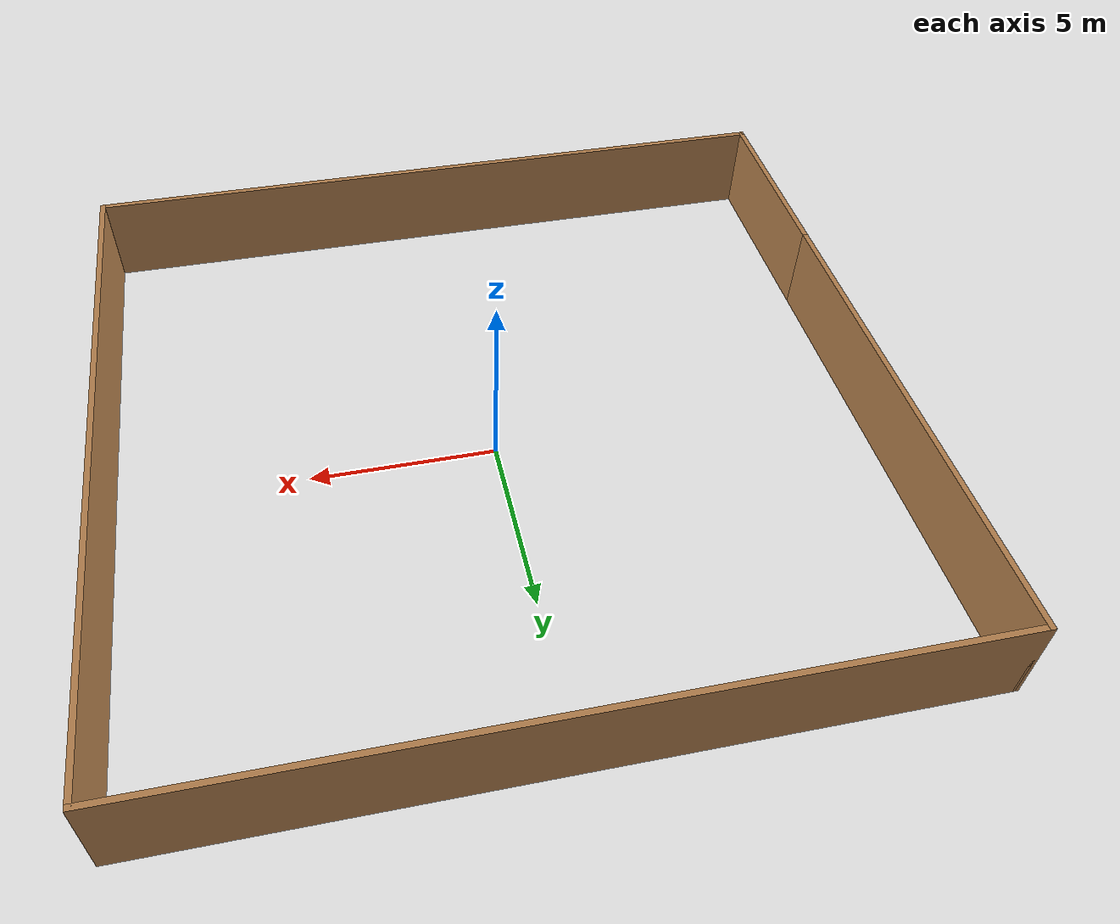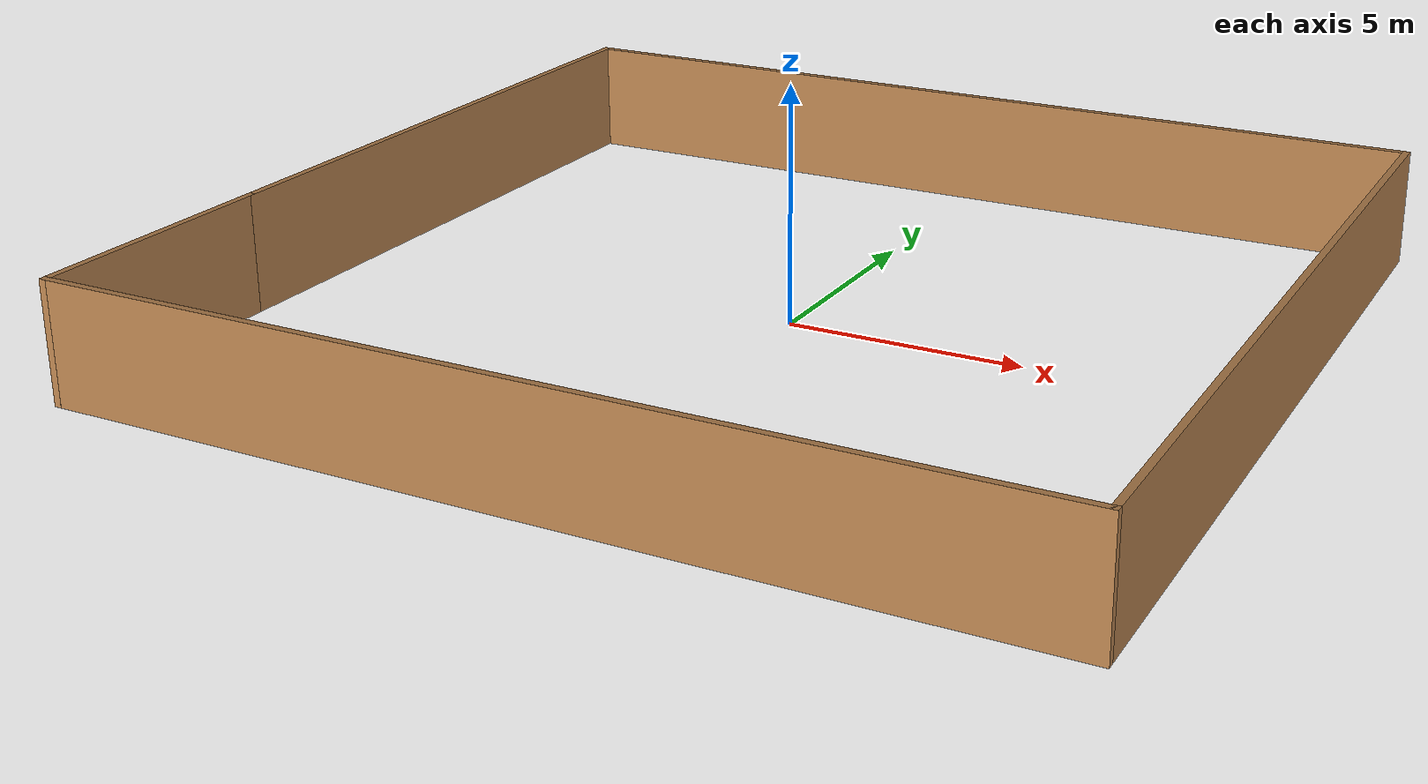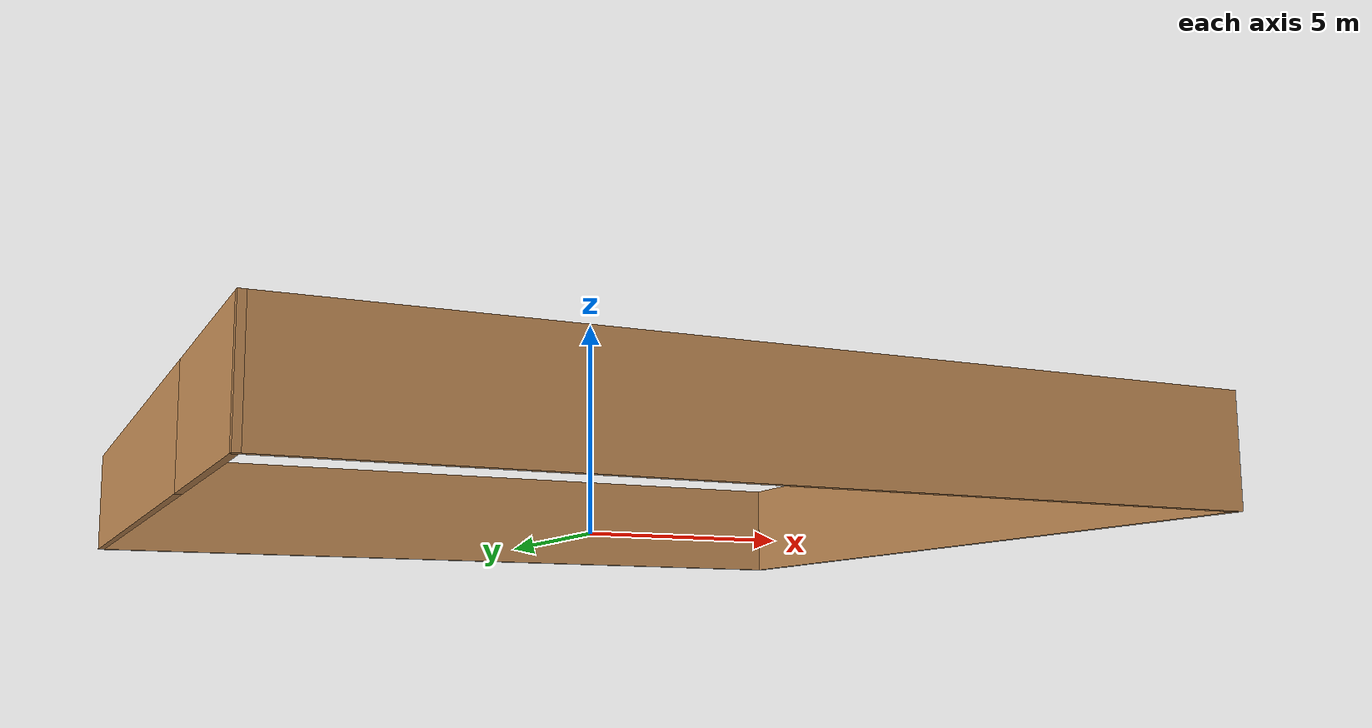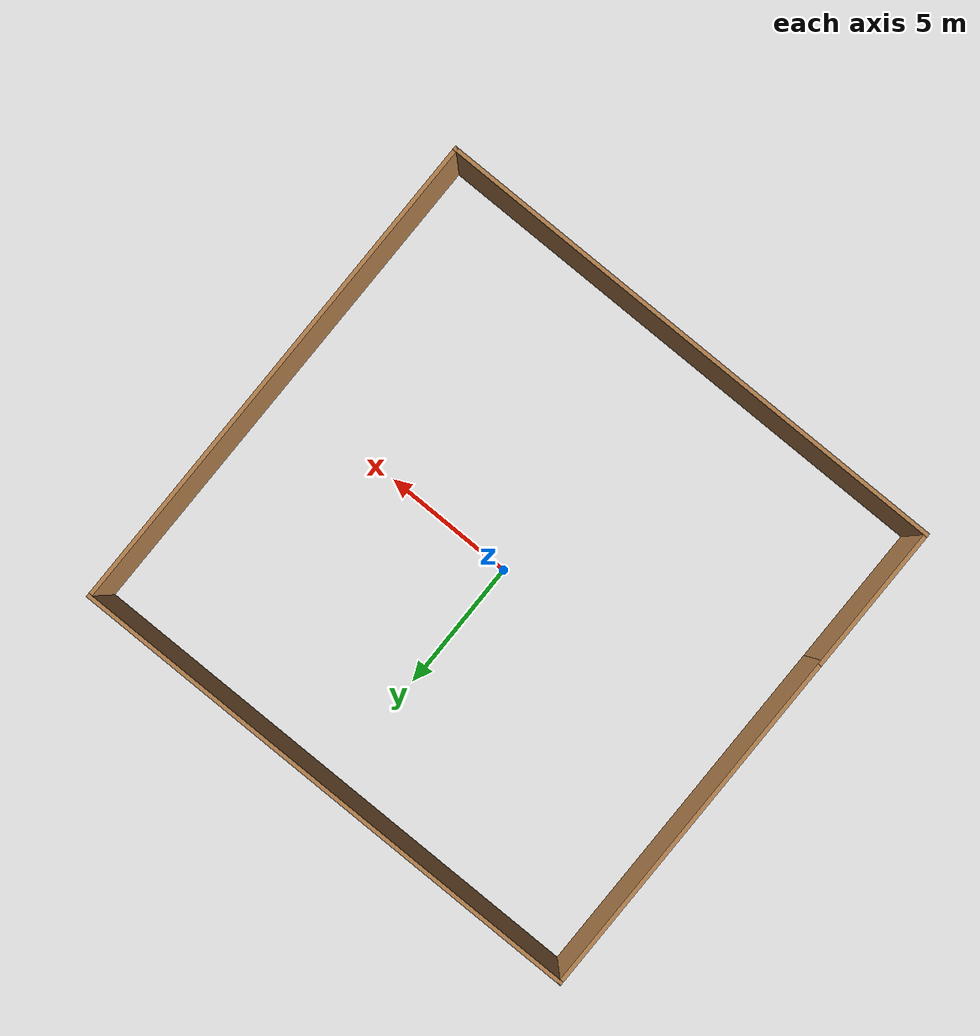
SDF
<?xml version='1.0'?>
<sdf version='1.7'>
  <model name='My_worlds_outline'>
    <pose>0.000206 -0.215404 0 0 -0 0</pose>
    <link name='Wall_63'>
      <collision name='Wall_63_Collision'>
        <geometry>
          <box>
            <size>13.75 0.15 2.5</size>
          </box>
        </geometry>
        <pose>0 0 1.25 0 -0 0</pose>
      </collision>
      <visual name='Wall_63_Visual'>
        <pose>0 0 1.25 0 -0 0</pose>
        <geometry>
          <box>
            <size>13.75 0.15 2.5</size>
          </box>
        </geometry>
        <material>
          <script>
            <uri>file://media/materials/scripts/gazebo.material</uri>
            <name>Gazebo/Wood</name>
          </script>
          <ambient>1 1 1 1</ambient>
        </material>
        <meta>
          <layer>0</layer>
        </meta>
      </visual>
      <pose>-10.05 2.75 0 0 -0 1.5708</pose>
    </link>
    <link name='Wall_64'>
      <collision name='Wall_64_Collision'>
        <geometry>
          <box>
            <size>20.25 0.15 2.5</size>
          </box>
        </geometry>
        <pose>0 0 1.25 0 -0 0</pose>
      </collision>
      <visual name='Wall_64_Visual'>
        <pose>0 0 1.25 0 -0 0</pose>
        <geometry>
          <box>
            <size>20.25 0.15 2.5</size>
          </box>
        </geometry>
        <material>
          <script>
            <uri>file://media/materials/scripts/gazebo.material</uri>
            <name>Gazebo/Wood</name>
          </script>
          <ambient>1 1 1 1</ambient>
        </material>
        <meta>
          <layer>0</layer>
        </meta>
      </visual>
      <pose>-0 9.55 0 0 -0 0</pose>
    </link>
    <link name='Wall_65'>
      <collision name='Wall_65_Collision'>
        <geometry>
          <box>
            <size>19.25 0.15 2.5</size>
          </box>
        </geometry>
        <pose>0 0 1.25 0 -0 0</pose>
      </collision>
      <visual name='Wall_65_Visual'>
        <pose>0 0 1.25 0 -0 0</pose>
        <geometry>
          <box>
            <size>19.25 0.15 2.5</size>
          </box>
        </geometry>
        <material>
          <script>
            <uri>file://media/materials/scripts/gazebo.material</uri>
            <name>Gazebo/Wood</name>
          </script>
          <ambient>1 1 1 1</ambient>
        </material>
        <meta>
          <layer>0</layer>
        </meta>
      </visual>
      <pose>10.05 0 0 0 -0 -1.5708</pose>
    </link>
    <link name='Wall_66'>
      <collision name='Wall_66_Collision'>
        <geometry>
          <box>
            <size>20.25 0.15 2.5</size>
          </box>
        </geometry>
        <pose>0 0 1.25 0 -0 0</pose>
      </collision>
      <visual name='Wall_66_Visual'>
        <pose>0 0 1.25 0 -0 0</pose>
        <geometry>
          <box>
            <size>20.25 0.15 2.5</size>
          </box>
        </geometry>
        <material>
          <script>
            <uri>file://media/materials/scripts/gazebo.material</uri>
            <name>Gazebo/Wood</name>
          </script>
          <ambient>1 1 1 1</ambient>
        </material>
        <meta>
          <layer>0</layer>
        </meta>
      </visual>
      <pose>-0 -9.55 0 0 -0 3.14159</pose>
    </link>
    <link name='Wall_67'>
      <collision name='Wall_67_Collision'>
        <geometry>
          <box>
            <size>5.65 0.15 2.5</size>
          </box>
        </geometry>
        <pose>0 0 1.25 0 -0 0</pose>
      </collision>
      <visual name='Wall_67_Visual'>
        <pose>0 0 1.25 0 -0 0</pose>
        <geometry>
          <box>
            <size>5.65 0.15 2.5</size>
          </box>
        </geometry>
        <material>
          <script>
            <uri>file://media/materials/scripts/gazebo.material</uri>
            <name>Gazebo/Wood</name>
          </script>
          <ambient>1 1 1 1</ambient>
        </material>
        <meta>
          <layer>0</layer>
        </meta>
      </visual>
      <pose>-10.05 -6.8 0 0 -0 1.5708</pose>
    </link>
    <static>1</static>
  </model>
</sdf>
